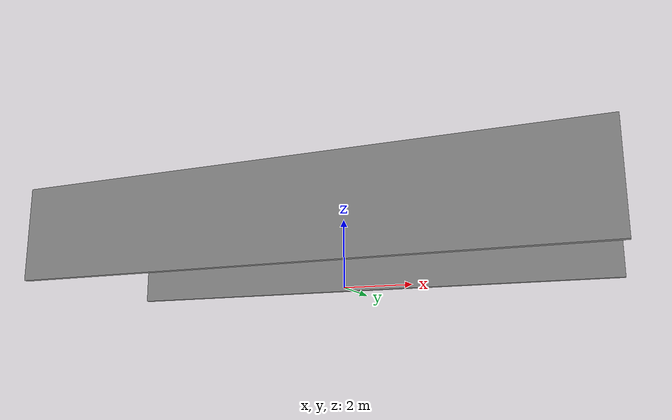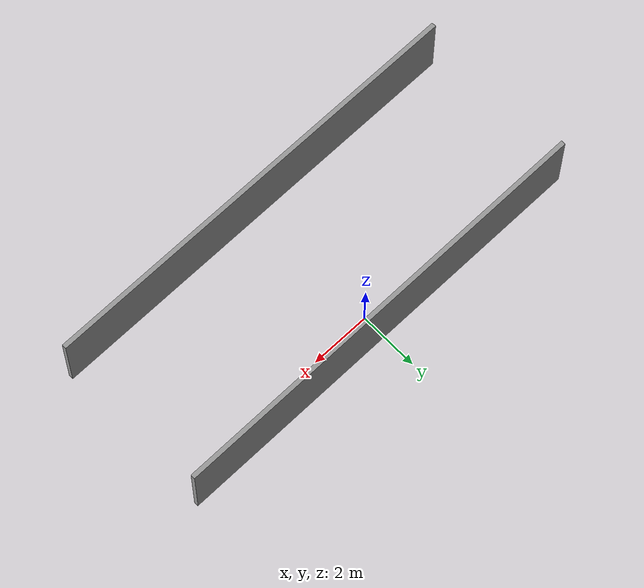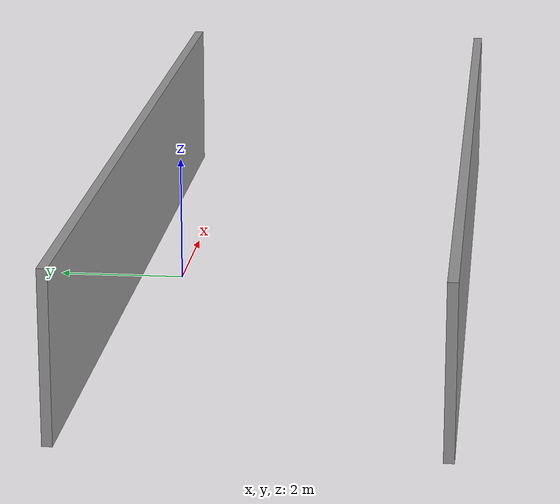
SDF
<?xml version='1.0'?>
<sdf version='1.6'>
  <model name='model_corridor00'>
    <pose frame=''>0.067501 -1.93104 0 0 -0 0</pose>
    <link name='Wall_24'>
      <collision name='Wall_24_Collision'>
        <geometry>
          <box>
            <size>14.75 0.15 2.5</size>
          </box>
        </geometry>
        <pose frame=''>0 0 1.25 0 -0 0</pose>
      </collision>
      <visual name='Wall_24_Visual'>
        <pose frame=''>0 0 1.25 0 -0 0</pose>
        <geometry>
          <box>
            <size>14.75 0.15 2.5</size>
          </box>
        </geometry>
        <material>
          <script>
            <uri>file://media/materials/scripts/gazebo.material</uri>
            <name>Gazebo/Grey</name>
          </script>
          <ambient>1 1 1 1</ambient>
        </material>
        <meta>
          <layer>0</layer>
        </meta>
      </visual>
      <pose frame=''>-0 2.675 0 0 -0 0</pose>
    </link>
    <link name='Wall_28'>
      <collision name='Wall_28_Collision'>
        <geometry>
          <box>
            <size>14.75 0.15 2.5</size>
          </box>
        </geometry>
        <pose frame=''>0 0 1.25 0 -0 0</pose>
      </collision>
      <visual name='Wall_28_Visual'>
        <pose frame=''>0 0 1.25 0 -0 0</pose>
        <geometry>
          <box>
            <size>14.75 0.15 2.5</size>
          </box>
        </geometry>
        <material>
          <script>
            <uri>file://media/materials/scripts/gazebo.material</uri>
            <name>Gazebo/Grey</name>
          </script>
          <ambient>1 1 1 1</ambient>
        </material>
        <meta>
          <layer>0</layer>
        </meta>
      </visual>
      <pose frame=''>-0 -2.675 0 0 -0 3.14159</pose>
    </link>
    <static>1</static>
  </model>
</sdf>
